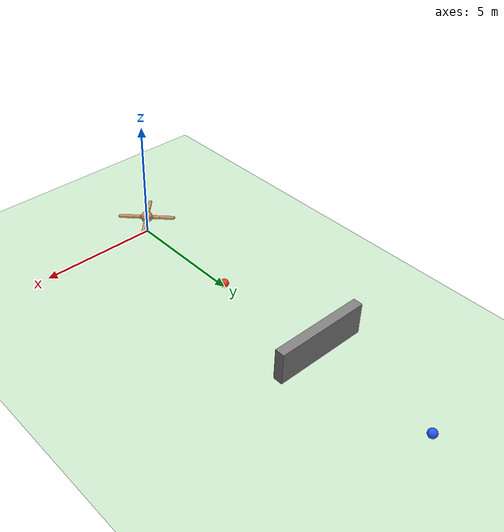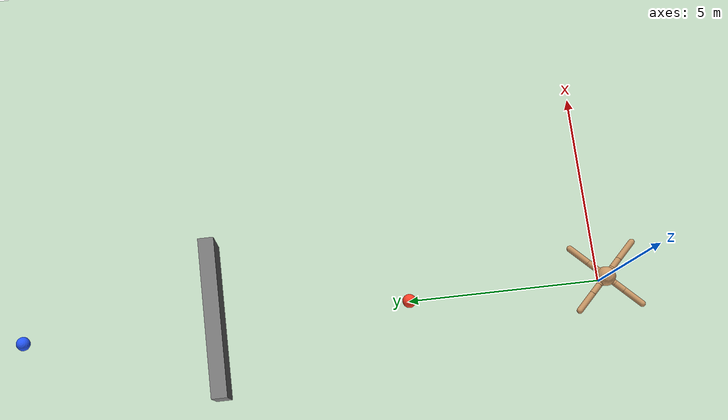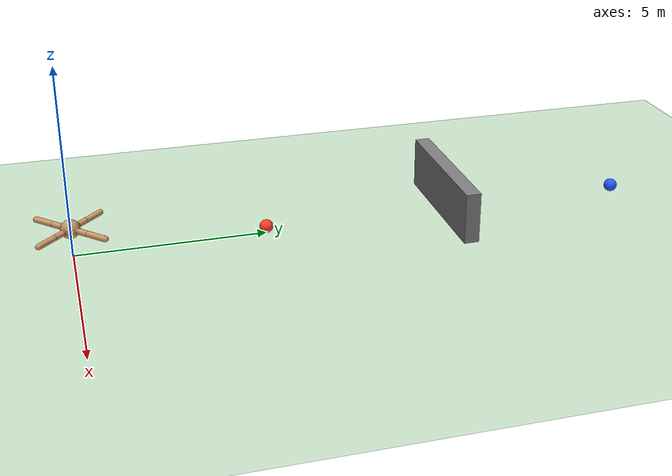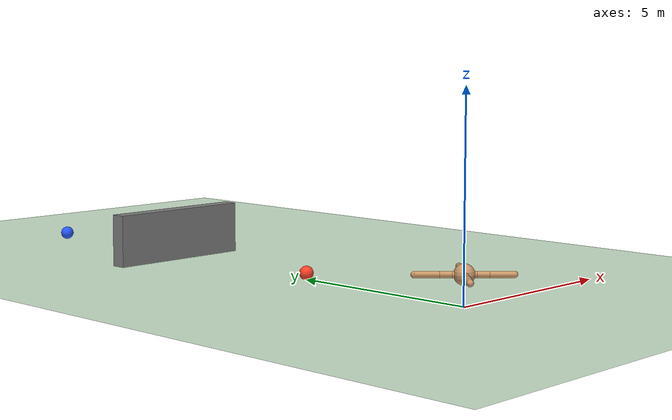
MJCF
<?xml version="1.0" encoding="utf-8"?>
<mujoco model="ant">
  <compiler angle="degree" coordinate="local" inertiafromgeom="true"/>
  <option integrator="RK4" timestep="0.01" gravity="0 0 -9.81"/>

  <default>
    <joint armature="1" damping="5" limited="true"/>
    <geom conaffinity="0" condim="3" density="5.0" friction="1.0 0.5 0.5" margin="0.01" rgba="0.8 0.6 0.4 1" solref="0.02 2" solimp="0.9 0.95 0.05"/>
  </default>

  <asset>
    <texture builtin="gradient" height="100" rgb1="1 1 1" rgb2="0 0 0" type="skybox" width="100"/>
    <texture builtin="flat" height="127" name="texgeom" rgb1="0.8 0.6 0.4" type="2d" width="127"/>
    <texture builtin="checker" height="100" name="texplane" rgb1="0 0 0" rgb2="0.8 0.8 0.8" type="2d" width="100"/>
    <material name="MatPlane" reflectance="0.5" shininess="1" specular="1" texture="texplane"/>
    <material name="geom" texture="texgeom" texuniform="true"/>
  </asset>

  <worldbody>
    <light cutoff="100" diffuse="1 1 1" dir="-0 0 -1.3" specular=".1 .1 .1" pos="0 0 2.5"/>
    <geom conaffinity="1" condim="3" name="floor" pos="0 0 0" rgba="0.8 0.9 0.8 1" size="40 40 40" type="plane" material="MatPlane"/>

    <!-- 两个动态目标小球：整体放在机器人前方的 y 轴方向。
         小球本身不阻挡机器人，运行时由 env_manager.py 沿 x 轴小范围来回移动；
         是否“接触”由 planner.py 中的 target_threshold 根据平面距离判断。 -->
    <geom name="target_ball_near" type="sphere" pos="0.0 5.0 0.18" size="0.18" rgba="1.0 0.25 0.15 1" contype="0" conaffinity="0"/>
    <geom name="target_ball_far" type="sphere" pos="0.0 15.0 0.18" size="0.18" rgba="0.15 0.35 1.0 1" contype="0" conaffinity="0"/>

    <!-- 两个小球之间的障碍墙：墙体横跨 x 方向，阻挡机器人沿 y 方向前进。 -->
    <geom name="obstacle_1" type="box" pos="0.0 10 0.45" size="2.00 0.20 0.9" rgba="0.5 0.5 0.5 1" contype="1" conaffinity="1" condim="3" friction="1.2 0.5 0.5"/>

    <body name="torso" pos="0 0 0.75">
      <camera name="track" mode="trackcom" pos="0 -3 0.3" xyaxes="1 0 0 0 0 1"/>
      <geom name="torso_geom" pos="0 0 0" size="0.25" type="sphere"/>
      <joint armature="0" damping="0" limited="false" margin="0.01" name="freejoint" pos="0 0 0" type="free"/>

      <body name="front_left_leg" pos="0 0 0">
        <geom fromto="0.0 0.0 0.0 0.2 0.2 0.0" name="aux_1_geom" size="0.08" type="capsule"/>
        <body name="aux_1" pos="0.2 0.2 0">
          <joint axis="0 0 1" name="hip_1" pos="0.0 0.0 0.0" range="-30 30" type="hinge"/>
          <geom fromto="0.0 0.0 0.0 0.2 0.2 0.0" name="leg_geom_1" size="0.08" type="capsule"/>
          <body pos="0.2 0.2 0">
            <joint axis="-1 1 0" name="ankle_1" pos="0.0 0.0 0.0" range="30 70" type="hinge"/>
            <geom fromto="0.0 0.0 0.0 0.4 0.4 0.0" name="ankle_geom_1" size="0.08" type="capsule"/>
          </body>
        </body>
      </body>

      <body name="front_right_leg" pos="0 0 0">
        <geom fromto="0.0 0.0 0.0 -0.2 0.2 0.0" name="aux_2_geom" size="0.08" type="capsule"/>
        <body name="aux_2" pos="-0.2 0.2 0">
          <joint axis="0 0 1" name="hip_2" pos="0.0 0.0 0.0" range="-30 30" type="hinge"/>
          <geom fromto="0.0 0.0 0.0 -0.2 0.2 0.0" name="leg_geom_2" size="0.08" type="capsule"/>
          <body pos="-0.2 0.2 0">
            <joint axis="1 1 0" name="ankle_2" pos="0.0 0.0 0.0" range="-70 -30" type="hinge"/>
            <geom fromto="0.0 0.0 0.0 -0.4 0.4 0.0" name="ankle_geom_2" size="0.08" type="capsule"/>
          </body>
        </body>
      </body>

      <body name="back_left_leg" pos="0 0 0">
        <geom fromto="0.0 0.0 0.0 -0.2 -0.2 0.0" name="aux_3_geom" size="0.08" type="capsule"/>
        <body name="aux_3" pos="-0.2 -0.2 0">
          <joint axis="0 0 1" name="hip_3" pos="0.0 0.0 0.0" range="-30 30" type="hinge"/>
          <geom fromto="0.0 0.0 0.0 -0.2 -0.2 0.0" name="leg_geom_3" size="0.08" type="capsule"/>
          <body pos="-0.2 -0.2 0">
            <joint axis="-1 1 0" name="ankle_3" pos="0.0 0.0 0.0" range="-70 -30" type="hinge"/>
            <geom fromto="0.0 0.0 0.0 -0.4 -0.4 0.0" name="ankle_geom_3" size="0.08" type="capsule"/>
          </body>
        </body>
      </body>

      <body name="back_right_leg" pos="0 0 0">
        <geom fromto="0.0 0.0 0.0 0.2 -0.2 0.0" name="aux_4_geom" size="0.08" type="capsule"/>
        <body name="aux_4" pos="0.2 -0.2 0">
          <joint axis="0 0 1" name="hip_4" pos="0.0 0.0 0.0" range="-30 30" type="hinge"/>
          <geom fromto="0.0 0.0 0.0 0.2 -0.2 0.0" name="leg_geom_4" size="0.08" type="capsule"/>
          <body pos="0.2 -0.2 0">
            <joint axis="1 1 0" name="ankle_4" pos="0.0 0.0 0.0" range="30 70" type="hinge"/>
            <geom fromto="0.0 0.0 0.0 0.4 -0.4 0.0" name="ankle_geom_4" size="0.08" type="capsule"/>
          </body>
        </body>
      </body>
    </body>
  </worldbody>

  <actuator>
    <motor ctrllimited="true" ctrlrange="-1.0 1.0" joint="hip_1" gear="30"/>
    <motor ctrllimited="true" ctrlrange="-1.0 1.0" joint="ankle_1" gear="30"/>
    <motor ctrllimited="true" ctrlrange="-1.0 1.0" joint="hip_2" gear="30"/>
    <motor ctrllimited="true" ctrlrange="-1.0 1.0" joint="ankle_2" gear="30"/>
    <motor ctrllimited="true" ctrlrange="-1.0 1.0" joint="hip_3" gear="30"/>
    <motor ctrllimited="true" ctrlrange="-1.0 1.0" joint="ankle_3" gear="30"/>
    <motor ctrllimited="true" ctrlrange="-1.0 1.0" joint="hip_4" gear="30"/>
    <motor ctrllimited="true" ctrlrange="-1.0 1.0" joint="ankle_4" gear="30"/>
  </actuator>
</mujoco>
